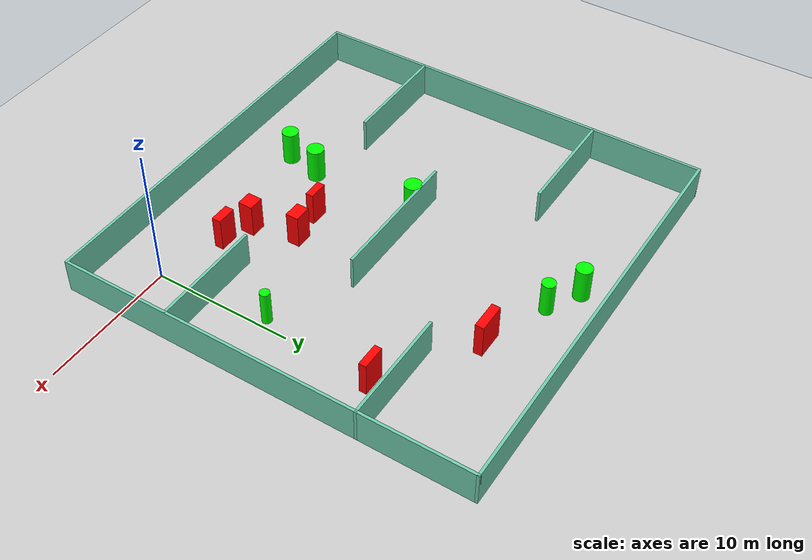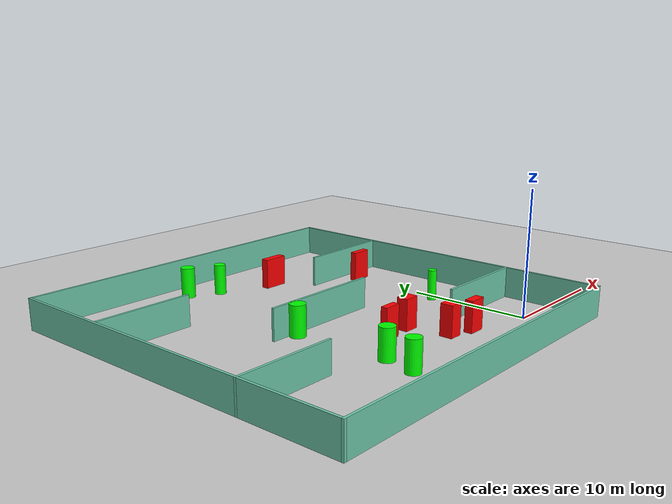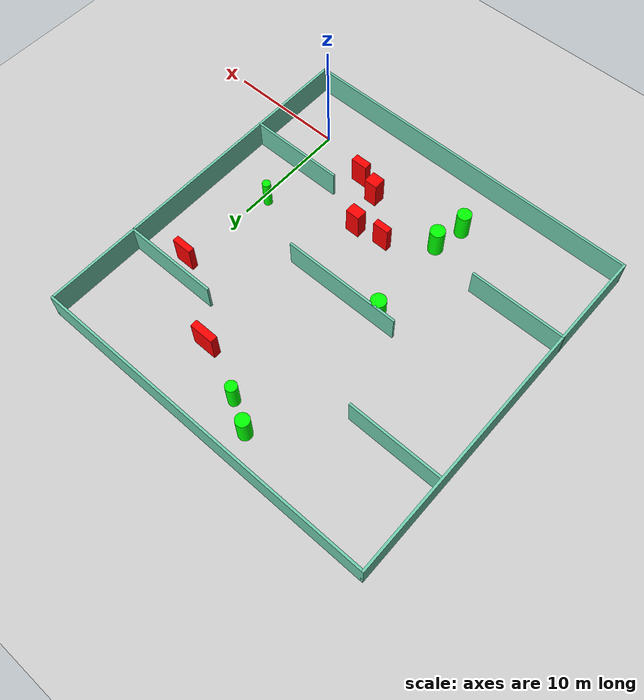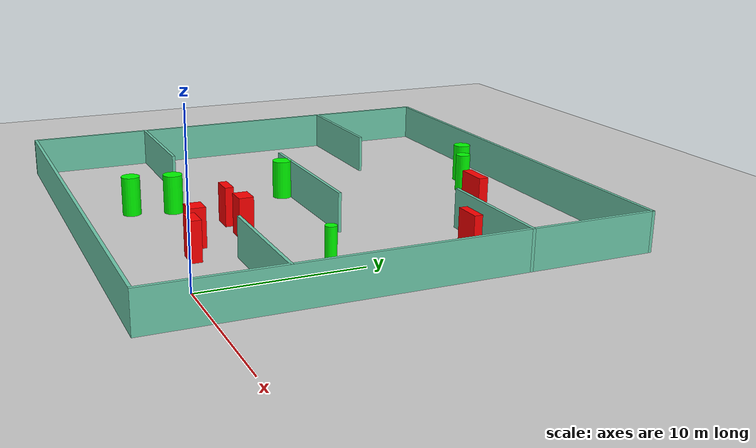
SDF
<sdf version="1.7">
 <world name="default">
  <light name="sun" type="directional">
   <pose>0 0 10 0 -0 0</pose>
   <diffuse>0.8 0.8 0.8 1</diffuse>
   <specular>0.2 0.2 0.2 1</specular>
   <attenuation>
    <range>1000</range>
    <constant>0.9</constant>
    <linear>0.01</linear>
    <quadratic>0.001</quadratic>
   </attenuation>
   <direction>-0.5 0.1 -0.9</direction>
   <spot><inner_angle>0</inner_angle><outer_angle>0</outer_angle><falloff>0</falloff></spot>
  </light>
  <model name="ground_plane">
   <static>1</static>
   <link name="link">
    <collision name="collision">
     <geometry><plane><normal>0 0 1</normal><size>100 100</size></plane></geometry>
     <surface>
      <contact><collide_bitmask>65535</collide_bitmask></contact>
      <friction><ode><mu>100</mu><mu2>50</mu2></ode></friction>
     </surface>
    </collision>
    <visual name="visual">
     <cast_shadows>0</cast_shadows>
     <geometry><plane><normal>0 0 1</normal><size>100 100</size></plane></geometry>
     <material>
      <script><uri>file://media/materials/scripts/gazebo.material</uri><name>Gazebo/Grey</name></script>
     </material>
    </visual>
   </link>
  </model>
  <gravity>0 0 -9.8</gravity>
  <magnetic_field>6e-06 2.3e-05 -4.2e-05</magnetic_field>
  <atmosphere type="adiabatic"/>
  <physics type="ode">
   <max_step_size>0.001</max_step_size>
   <real_time_factor>1</real_time_factor>
   <real_time_update_rate>1000</real_time_update_rate>
  </physics>
  <scene><ambient>0.4 0.4 0.4 1</ambient><background>0.7 0.7 0.7 1</background><shadows>1</shadows></scene>
  <spherical_coordinates>
   <surface_model>EARTH_WGS84</surface_model>
   <latitude_deg>0</latitude_deg>
   <longitude_deg>0</longitude_deg>
   <elevation>0</elevation>
   <heading_deg>0</heading_deg>
  </spherical_coordinates>
  <model name="my_base_walls">
   <link name="Wall_10">
    <collision name="Wall_10_Collision">
     <geometry><box><size>8.2 0.2 2.5</size></box></geometry>
     <pose>0 0 1.25 0 -0 0</pose>
    </collision>
    <visual name="Wall_10_Visual">
     <pose>0 0 1.25 0 -0 0</pose>
     <geometry><box><size>8.2 0.2 2.5</size></box></geometry>
     <material>
      <script><uri>file://media/materials/scripts/gazebo.material</uri><name>Gazebo/Grey</name></script>
      <ambient>0.435294 0.796078 0.67451 1</ambient>
     </material>
     <meta><layer>0</layer></meta>
    </visual>
    <pose>-11 -7 0 0 -0 0</pose>
   </link>
   <link name="Wall_12">
    <collision name="Wall_12_Collision">
     <geometry><box><size>8.2 0.2 2.5</size></box></geometry>
     <pose>0 0 1.25 0 -0 0</pose>
    </collision>
    <visual name="Wall_12_Visual">
     <pose>0 0 1.25 0 -0 0</pose>
     <geometry><box><size>8.2 0.2 2.5</size></box></geometry>
     <material>
      <script><uri>file://media/materials/scripts/gazebo.material</uri><name>Gazebo/Grey</name></script>
      <ambient>0.435294 0.796078 0.67451 1</ambient>
     </material>
     <meta><layer>0</layer></meta>
    </visual>
    <pose>-11 7 0 0 -0 0</pose>
   </link>
   <link name="Wall_14">
    <collision name="Wall_14_Collision">
     <geometry><box><size>8.2 0.2 2.5</size></box></geometry>
     <pose>0 0 1.25 0 -0 0</pose>
    </collision>
    <visual name="Wall_14_Visual">
     <pose>0 0 1.25 0 -0 0</pose>
     <geometry><box><size>8.2 0.2 2.5</size></box></geometry>
     <material>
      <script><uri>file://media/materials/scripts/gazebo.material</uri><name>Gazebo/Grey</name></script>
      <ambient>0.435294 0.796078 0.67451 1</ambient>
     </material>
     <meta><layer>0</layer></meta>
    </visual>
    <pose>11 7 0 0 -0 3.14159</pose>
   </link>
   <link name="Wall_16">
    <collision name="Wall_16_Collision">
     <geometry><box><size>10.2 0.2 2.5</size></box></geometry>
     <pose>0 0 1.25 0 -0 0</pose>
    </collision>
    <visual name="Wall_16_Visual">
     <pose>0 0 1.25 0 -0 0</pose>
     <geometry><box><size>10.2 0.2 2.5</size></box></geometry>
     <material>
      <script><uri>file://media/materials/scripts/gazebo.material</uri><name>Gazebo/Grey</name></script>
      <ambient>0.435294 0.796078 0.67451 1</ambient>
     </material>
     <meta><layer>0</layer></meta>
    </visual>
    <pose>0 0 0 0 -0 3.14159</pose>
   </link>
   <link name="Wall_2">
    <collision name="Wall_2_Collision">
     <geometry><box><size>30.2 0.2 2.5</size></box></geometry>
     <pose>0 0 1.25 0 -0 0</pose>
    </collision>
    <visual name="Wall_2_Visual">
     <pose>0 0 1.25 0 -0 0</pose>
     <geometry><box><size>30.2 0.2 2.5</size></box></geometry>
     <material>
      <script><uri>file://media/materials/scripts/gazebo.material</uri><name>Gazebo/Grey</name></script>
      <ambient>0.435294 0.796078 0.67451 1</ambient>
     </material>
     <meta><layer>0</layer></meta>
    </visual>
    <pose>0 -15 0 0 -0 3.14159</pose>
   </link>
   <link name="Wall_3">
    <collision name="Wall_3_Collision">
     <geometry><box><size>30.2 0.2 2.5</size></box></geometry>
     <pose>0 0 1.25 0 -0 0</pose>
    </collision>
    <visual name="Wall_3_Visual">
     <pose>0 0 1.25 0 -0 0</pose>
     <geometry><box><size>30.2 0.2 2.5</size></box></geometry>
     <material>
      <script><uri>file://media/materials/scripts/gazebo.material</uri><name>Gazebo/Grey</name></script>
      <ambient>0.435294 0.796078 0.67451 1</ambient>
     </material>
     <meta><layer>0</layer></meta>
    </visual>
    <pose>-15 0 0 0 -0 1.5708</pose>
   </link>
   <link name="Wall_4">
    <collision name="Wall_4_Collision">
     <geometry><box><size>30.2 0.2 2.5</size></box></geometry>
     <pose>0 0 1.25 0 -0 0</pose>
    </collision>
    <visual name="Wall_4_Visual">
     <pose>0 0 1.25 0 -0 0</pose>
     <geometry><box><size>30.2 0.2 2.5</size></box></geometry>
     <material>
      <script><uri>file://media/materials/scripts/gazebo.material</uri><name>Gazebo/Grey</name></script>
      <ambient>0.435294 0.796078 0.67451 1</ambient>
     </material>
     <meta><layer>0</layer></meta>
    </visual>
    <pose>0 15 0 0 -0 0</pose>
   </link>
   <link name="Wall_6">
    <collision name="Wall_6_Collision">
     <geometry><box><size>30.2 0.2 2.5</size></box></geometry>
     <pose>0 0 1.25 0 -0 0</pose>
    </collision>
    <visual name="Wall_6_Visual">
     <pose>0 0 1.25 0 -0 0</pose>
     <geometry><box><size>30.2 0.2 2.5</size></box></geometry>
     <material>
      <script><uri>file://media/materials/scripts/gazebo.material</uri><name>Gazebo/Grey</name></script>
      <ambient>0.435294 0.796078 0.67451 1</ambient>
     </material>
     <meta><layer>0</layer></meta>
    </visual>
    <pose>15 0 0 0 -0 1.5708</pose>
   </link>
   <link name="Wall_8">
    <collision name="Wall_8_Collision">
     <geometry><box><size>8.2 0.2 2.5</size></box></geometry>
     <pose>0 0 1.25 0 -0 0</pose>
    </collision>
    <visual name="Wall_8_Visual">
     <pose>0 0 1.25 0 -0 0</pose>
     <geometry><box><size>8.2 0.2 2.5</size></box></geometry>
     <material>
      <script><uri>file://media/materials/scripts/gazebo.material</uri><name>Gazebo/Grey</name></script>
      <ambient>0.435294 0.796078 0.67451 1</ambient>
     </material>
     <meta><layer>0</layer></meta>
    </visual>
    <pose>11 -7 0 0 -0 3.14159</pose>
   </link>
   <static>1</static>
   <pose>-11 11 0 0 -0 0</pose>
  </model>
  <model name="cylinder1">
   <static>1</static>
   <link name="link">
    <inertial>
     <mass>1</mass>
     <inertia><ixx>0.5</ixx><ixy>0</ixy><ixz>0</ixz><iyy>0.5</iyy><iyz>0</iyz><izz>1</izz></inertia>
    </inertial>
    <collision name="collision">
     <geometry><cylinder><radius>0.5893053003913332</radius><length>2.5</length></cylinder></geometry>
    </collision>
    <visual name="visual">
     <geometry><cylinder><radius>0.5893053003913332</radius><length>2.5</length></cylinder></geometry>
     <material>
      <ambient>0 1 0 1</ambient>
      <diffuse>0 1 0 1</diffuse>
      <specular>0.1 0.1 0.1 1</specular>
      <emissive>0 0 0 0</emissive>
     </material>
    </visual>
   </link>
   <pose>-14.18634713605282 0.16878295837243318 1.25 0 0 0</pose>
  </model>
  <model name="cylinder2">
   <static>1</static>
   <link name="link">
    <inertial>
     <mass>1</mass>
     <inertia><ixx>0.5</ixx><ixy>0</ixy><ixz>0</ixz><iyy>0.5</iyy><iyz>0</iyz><izz>1</izz></inertia>
    </inertial>
    <collision name="collision">
     <geometry><cylinder><radius>0.6294335915696552</radius><length>2.5</length></cylinder></geometry>
    </collision>
    <visual name="visual">
     <geometry><cylinder><radius>0.6294335915696552</radius><length>2.5</length></cylinder></geometry>
     <material>
      <ambient>0 1 0 1</ambient>
      <diffuse>0 1 0 1</diffuse>
      <specular>0.1 0.1 0.1 1</specular>
      <emissive>0 0 0 0</emissive>
     </material>
    </visual>
   </link>
   <pose>-14.137535754956517 10.429314326243873 1.25 0 0 0</pose>
  </model>
  <model name="cylinder3">
   <static>1</static>
   <link name="link">
    <inertial>
     <mass>1</mass>
     <inertia><ixx>0.5</ixx><ixy>0</ixy><ixz>0</ixz><iyy>0.5</iyy><iyz>0</iyz><izz>1</izz></inertia>
    </inertial>
    <collision name="collision">
     <geometry><cylinder><radius>0.4707330588976082</radius><length>2.5</length></cylinder></geometry>
    </collision>
    <visual name="visual">
     <geometry><cylinder><radius>0.4707330588976082</radius><length>2.5</length></cylinder></geometry>
     <material>
      <ambient>0 1 0 1</ambient>
      <diffuse>0 1 0 1</diffuse>
      <specular>0.1 0.1 0.1 1</specular>
      <emissive>0 0 0 0</emissive>
     </material>
    </visual>
   </link>
   <pose>-10.86805013516431 22.43853048535735 1.25 0 0 0</pose>
  </model>
  <model name="cylinder4">
   <static>1</static>
   <link name="link">
    <inertial>
     <mass>1</mass>
     <inertia><ixx>0.5</ixx><ixy>0</ixy><ixz>0</ixz><iyy>0.5</iyy><iyz>0</iyz><izz>1</izz></inertia>
    </inertial>
    <collision name="collision">
     <geometry><cylinder><radius>0.34891191284580925</radius><length>2.5</length></cylinder></geometry>
    </collision>
    <visual name="visual">
     <geometry><cylinder><radius>0.34891191284580925</radius><length>2.5</length></cylinder></geometry>
     <material>
      <ambient>0 1 0 1</ambient>
      <diffuse>0 1 0 1</diffuse>
      <specular>0.1 0.1 0.1 1</specular>
      <emissive>0 0 0 0</emissive>
     </material>
    </visual>
   </link>
   <pose>-0.6122200644438287 8.120127129434763 1.25 0 0 0</pose>
  </model>
  <model name="cylinder5">
   <static>1</static>
   <link name="link">
    <inertial>
     <mass>1</mass>
     <inertia><ixx>0.5</ixx><ixy>0</ixy><ixz>0</ixz><iyy>0.5</iyy><iyz>0</iyz><izz>1</izz></inertia>
    </inertial>
    <collision name="collision">
     <geometry><cylinder><radius>0.5638354181640384</radius><length>2.5</length></cylinder></geometry>
    </collision>
    <visual name="visual">
     <geometry><cylinder><radius>0.5638354181640384</radius><length>2.5</length></cylinder></geometry>
     <material>
      <ambient>0 1 0 1</ambient>
      <diffuse>0 1 0 1</diffuse>
      <specular>0.1 0.1 0.1 1</specular>
      <emissive>0 0 0 0</emissive>
     </material>
    </visual>
   </link>
   <pose>-13.224457989975885 23.721336895667996 1.25 0 0 0</pose>
  </model>
  <model name="cylinder6">
   <static>1</static>
   <link name="link">
    <inertial>
     <mass>1</mass>
     <inertia><ixx>0.5</ixx><ixy>0</ixy><ixz>0</ixz><iyy>0.5</iyy><iyz>0</iyz><izz>1</izz></inertia>
    </inertial>
    <collision name="collision">
     <geometry><cylinder><radius>0.6177830270120028</radius><length>2.5</length></cylinder></geometry>
    </collision>
    <visual name="visual">
     <geometry><cylinder><radius>0.6177830270120028</radius><length>2.5</length></cylinder></geometry>
     <material>
      <ambient>0 1 0 1</ambient>
      <diffuse>0 1 0 1</diffuse>
      <specular>0.1 0.1 0.1 1</specular>
      <emissive>0 0 0 0</emissive>
     </material>
    </visual>
   </link>
   <pose>-13.596782736034221 2.753587682653798 1.25 0 0 0</pose>
  </model>
  <model name="box1">
   <static>1</static>
   <link name="link">
    <inertial>
     <mass>1</mass>
     <inertia><ixx>0.083</ixx><ixy>0</ixy><ixz>0</ixz><iyy>0.083</iyy><iyz>0</iyz><izz>0.083</izz></inertia>
    </inertial>
    <collision name="collision">
     <geometry><box><size>1.4209204332973826 0.6620475110865327 2.5</size></box></geometry>
    </collision>
    <visual name="visual">
     <geometry><box><size>1.4209204332973826 0.6620475110865327 2.5</size></box></geometry>
     <material>
      <ambient>1 0 0 1</ambient>
      <diffuse>1 0 0 1</diffuse>
      <specular>0.1 0.1 0.1 1</specular>
      <emissive>0 0 0 0</emissive>
     </material>
    </visual>
    <sensor name="my_contact" type="contact">
     <contact><collision>box_collision</collision><topic>__default_topic__</topic></contact>
    </sensor>
   </link>
   <pose>-4.831962569991971 1.5189961711755497 1.25 0 0 0</pose>
  </model>
  <model name="box2">
   <static>1</static>
   <link name="link">
    <inertial>
     <mass>1</mass>
     <inertia><ixx>0.083</ixx><ixy>0</ixy><ixz>0</ixz><iyy>0.083</iyy><iyz>0</iyz><izz>0.083</izz></inertia>
    </inertial>
    <collision name="collision">
     <geometry><box><size>1.1186080013544535 1.0543226213813028 2.5</size></box></geometry>
    </collision>
    <visual name="visual">
     <geometry><box><size>1.1186080013544535 1.0543226213813028 2.5</size></box></geometry>
     <material>
      <ambient>1 0 0 1</ambient>
      <diffuse>1 0 0 1</diffuse>
      <specular>0.1 0.1 0.1 1</specular>
      <emissive>0 0 0 0</emissive>
     </material>
    </visual>
    <sensor name="my_contact" type="contact">
     <contact><collision>box_collision</collision><topic>__default_topic__</topic></contact>
    </sensor>
   </link>
   <pose>-6.826904860657139 2.2264756838714597 1.25 0 0 0</pose>
  </model>
  <model name="box3">
   <static>1</static>
   <link name="link">
    <inertial>
     <mass>1</mass>
     <inertia><ixx>0.083</ixx><ixy>0</ixy><ixz>0</ixz><iyy>0.083</iyy><iyz>0</iyz><izz>0.083</izz></inertia>
    </inertial>
    <collision name="collision">
     <geometry><box><size>1.7071002095316934 0.5226755655935645 2.5</size></box></geometry>
    </collision>
    <visual name="visual">
     <geometry><box><size>1.7071002095316934 0.5226755655935645 2.5</size></box></geometry>
     <material>
      <ambient>1 0 0 1</ambient>
      <diffuse>1 0 0 1</diffuse>
      <specular>0.1 0.1 0.1 1</specular>
      <emissive>0 0 0 0</emissive>
     </material>
    </visual>
    <sensor name="my_contact" type="contact">
     <contact><collision>box_collision</collision><topic>__default_topic__</topic></contact>
    </sensor>
   </link>
   <pose>0.14713242993597575 16.429408953341223 1.25 0 0 0</pose>
  </model>
  <model name="box4">
   <static>1</static>
   <link name="link">
    <inertial>
     <mass>1</mass>
     <inertia><ixx>0.083</ixx><ixy>0</ixy><ixz>0</ixz><iyy>0.083</iyy><iyz>0</iyz><izz>0.083</izz></inertia>
    </inertial>
    <collision name="collision">
     <geometry><box><size>1.2448261849963753 0.9270098076591848 2.5</size></box></geometry>
    </collision>
    <visual name="visual">
     <geometry><box><size>1.2448261849963753 0.9270098076591848 2.5</size></box></geometry>
     <material>
      <ambient>1 0 0 1</ambient>
      <diffuse>1 0 0 1</diffuse>
      <specular>0.1 0.1 0.1 1</specular>
      <emissive>0 0 0 0</emissive>
     </material>
    </visual>
    <sensor name="my_contact" type="contact">
     <contact><collision>box_collision</collision><topic>__default_topic__</topic></contact>
    </sensor>
   </link>
   <pose>-7.682037154955861 5.47737023643181 1.25 0 0 0</pose>
  </model>
  <model name="box5">
   <static>1</static>
   <link name="link">
    <inertial>
     <mass>1</mass>
     <inertia><ixx>0.083</ixx><ixy>0</ixy><ixz>0</ixz><iyy>0.083</iyy><iyz>0</iyz><izz>0.083</izz></inertia>
    </inertial>
    <collision name="collision">
     <geometry><box><size>2.07363847698832 0.6221659866390424 2.5</size></box></geometry>
    </collision>
    <visual name="visual">
     <geometry><box><size>2.07363847698832 0.6221659866390424 2.5</size></box></geometry>
     <material>
      <ambient>1 0 0 1</ambient>
      <diffuse>1 0 0 1</diffuse>
      <specular>0.1 0.1 0.1 1</specular>
      <emissive>0 0 0 0</emissive>
     </material>
    </visual>
    <sensor name="my_contact" type="contact">
     <contact><collision>box_collision</collision><topic>__default_topic__</topic></contact>
    </sensor>
   </link>
   <pose>-6.351566678306606 20.650609454044982 1.25 0 0 0</pose>
  </model>
  <model name="box6">
   <static>1</static>
   <link name="link">
    <inertial>
     <mass>1</mass>
     <inertia><ixx>0.083</ixx><ixy>0</ixy><ixz>0</ixz><iyy>0.083</iyy><iyz>0</iyz><izz>0.083</izz></inertia>
    </inertial>
    <collision name="collision">
     <geometry><box><size>1.3930785986626772 0.5555925604969311 2.5</size></box></geometry>
    </collision>
    <visual name="visual">
     <geometry><box><size>1.3930785986626772 0.5555925604969311 2.5</size></box></geometry>
     <material>
      <ambient>1 0 0 1</ambient>
      <diffuse>1 0 0 1</diffuse>
      <specular>0.1 0.1 0.1 1</specular>
      <emissive>0 0 0 0</emissive>
     </material>
    </visual>
    <sensor name="my_contact" type="contact">
     <contact><collision>box_collision</collision><topic>__default_topic__</topic></contact>
    </sensor>
   </link>
   <pose>-10.125347560298525 5.19160389558883 1.25 0 0 0</pose>
  </model>
 </world>
</sdf>
